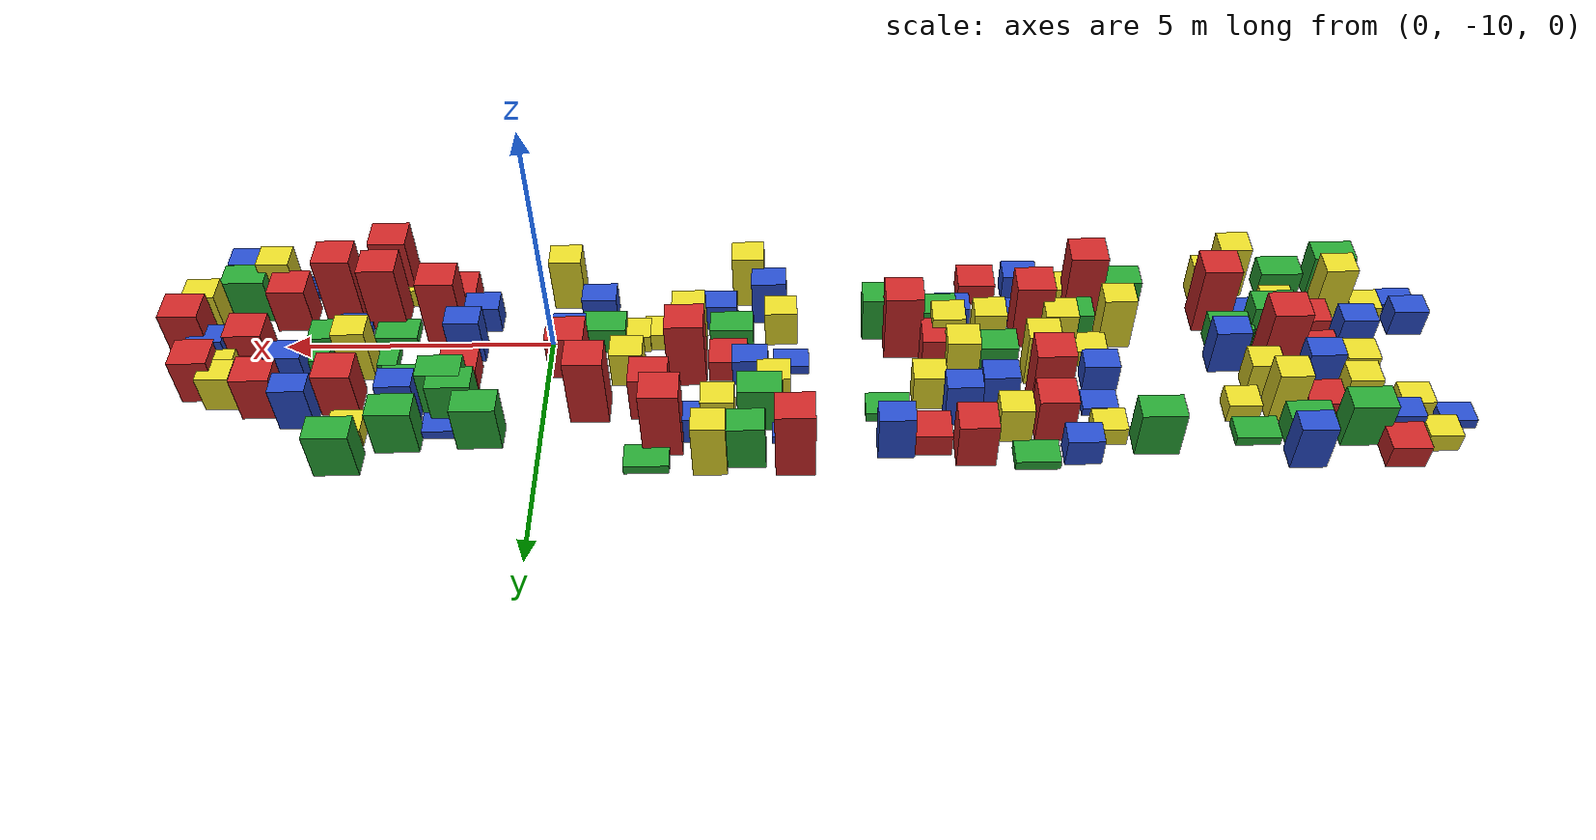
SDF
<?xml version="1.0" encoding="UTF-8"?>
<sdf version="1.4">
  <model name="baggage_group_C">
      <model name='baggage_A_0.5_0'>
        <include>
          <uri>model://baggage_A_0.5</uri>
          <pose>-8.03594 -11.2169 0.25049 0 -0 0</pose>
        </include>
      </model>
      <model name='baggage_A_0.5_1'>
        <include>
          <uri>model://baggage_A_0.5</uri>
          <pose>-14.2316 -9.33114 0.25012 0 -0 0</pose>
        </include>
      </model>
      <model name='baggage_A_0.5_11'>
        <include>
          <uri>model://baggage_A_0.5</uri>
          <pose>-3.31837 -9.30433 0.250138 0 -0 0</pose>
        </include>
      </model>
      <model name='baggage_A_0.5_12'>
        <include>
          <uri>model://baggage_A_0.5</uri>
          <pose>1.87194 -11.1809 0.25025 0 -0 0</pose>
        </include>
      </model>
      <model name='baggage_A_0.5_13'>
        <include>
          <uri>model://baggage_A_0.5</uri>
          <pose>1.60495 -9.14729 0.249612 0 -0 0</pose>
        </include>
      </model>
      <model name='baggage_A_0.5_14'>
        <include>
          <uri>model://baggage_A_0.5</uri>
          <pose>-7.25875 -9.4415 0.249945 0 -0 0</pose>
        </include>
      </model>
      <model name='baggage_A_0.5_17'>
        <include>
          <uri>model://baggage_A_0.5</uri>
          <pose>5.55061 -9.07477 0.249861 0 -0 0</pose>
        </include>
      </model>
      <model name='baggage_A_0.5_2'>
        <include>
          <uri>model://baggage_A_0.5</uri>
          <pose>-15.2039 -7.06577 0.250351 0 -0 0</pose>
        </include>
      </model>
      <model name='baggage_A_0.5_3'>
        <include>
          <uri>model://baggage_A_0.5</uri>
          <pose>-14.2574 -10.1602 0.249714 0 -0 0</pose>
        </include>
      </model>
      <model name='baggage_A_0.5_4'>
        <include>
          <uri>model://baggage_A_0.5</uri>
          <pose>-6.92975 -7.46539 0.249929 0 -0 0</pose>
        </include>
      </model>
      <model name='baggage_A_0.5_8'>
        <include>
          <uri>model://baggage_A_0.5</uri>
          <pose>-14.0214 -8.09758 0.249739 0 -0 0</pose>
        </include>
      </model>
      <model name='baggage_A_1.0_0'>
        <include>
          <uri>model://baggage_A_1.0</uri>
          <pose>5.45859 -9.61955 0.500424 0 -0 0</pose>
        </include>
      </model>
      <model name='baggage_A_1.0_11'>
        <include>
          <uri>model://baggage_A_1.0</uri>
          <pose>6.26723 -8.96247 0.50022 0 -0 0</pose>
        </include>
      </model>
      <model name='baggage_A_1.0_12'>
        <include>
          <uri>model://baggage_A_1.0</uri>
          <pose>-0.366477 -9.43157 0.500268 0 -0 0</pose>
        </include>
      </model>
      <model name='baggage_A_1.0_13'>
        <include>
          <uri>model://baggage_A_1.0</uri>
          <pose>-7.19822 -9.26942 0.499913 0 -0 0</pose>
        </include>
      </model>
      <model name='baggage_A_1.0_15'>
        <include>
          <uri>model://baggage_A_1.0</uri>
          <pose>5.06848 -8.52743 0.499714 0 -0 0</pose>
        </include>
      </model>
      <model name='baggage_A_1.0_18'>
        <include>
          <uri>model://baggage_A_1.0</uri>
          <pose>-1.93145 -8.39325 0.500077 0 -0 0</pose>
        </include>
      </model>
      <model name='baggage_A_1.0_19'>
        <include>
          <uri>model://baggage_A_1.0</uri>
          <pose>-7.68545 -7.21501 0.50038 0 -0 0</pose>
        </include>
      </model>
      <model name='baggage_A_1.0_2'>
        <include>
          <uri>model://baggage_A_1.0</uri>
          <pose>-9.12711 -7.76509 0.499893 0 -0 0</pose>
        </include>
      </model>
      <model name='baggage_A_1.0_7'>
        <include>
          <uri>model://baggage_A_1.0</uri>
          <pose>4.91955 -10.7368 0.499658 0 -0 0</pose>
        </include>
      </model>
      <model name='baggage_A_1.0_8'>
        <include>
          <uri>model://baggage_A_1.0</uri>
          <pose>3.65214 -8.58556 0.500396 0 -0 0</pose>
        </include>
      </model>
      <model name='baggage_A_1.5_0'>
        <include>
          <uri>model://baggage_A_1.5</uri>
          <pose>-10.0364 -10.8358 0.750316 0 -0 0</pose>
        </include>
      </model>
      <model name='baggage_A_1.5_1'>
        <include>
          <uri>model://baggage_A_1.5</uri>
          <pose>-9.10882 -8.39068 0.74973 0 -0 0</pose>
        </include>
      </model>
      <model name='baggage_A_1.5_10'>
        <include>
          <uri>model://baggage_A_1.5</uri>
          <pose>-6.54813 -9.8382 0.750412 0 -0 0</pose>
        </include>
      </model>
      <model name='baggage_A_1.5_14'>
        <include>
          <uri>model://baggage_A_1.5</uri>
          <pose>-13.4679 -9.32583 0.749722 0 -0 0</pose>
        </include>
      </model>
      <model name='baggage_A_1.5_16'>
        <include>
          <uri>model://baggage_A_1.5</uri>
          <pose>3.15994 -10.748 0.749519 0 -0 0</pose>
        </include>
      </model>
      <model name='baggage_A_1.5_18'>
        <include>
          <uri>model://baggage_A_1.5</uri>
          <pose>-12.4395 -10.4565 0.750143 0 -0 0</pose>
        </include>
      </model>
      <model name='baggage_A_1.5_19'>
        <include>
          <uri>model://baggage_A_1.5</uri>
          <pose>4.03504 -11.0029 0.74987 0 -0 0</pose>
        </include>
      </model>
      <model name='baggage_A_1.5_2'>
        <include>
          <uri>model://baggage_A_1.5</uri>
          <pose>-2.20156 -7.55419 0.750259 0 -0 0</pose>
        </include>
      </model>
      <model name='baggage_A_1.5_3'>
        <include>
          <uri>model://baggage_A_1.5</uri>
          <pose>3.08282 -11.4936 0.750184 0 -0 0</pose>
        </include>
      </model>
      <model name='baggage_A_1.5_4'>
        <include>
          <uri>model://baggage_A_1.5</uri>
          <pose>2.01974 -10.377 0.749721 0 -0 0</pose>
        </include>
      </model>
      <model name='baggage_A_1.5_5'>
        <include>
          <uri>model://baggage_A_1.5</uri>
          <pose>-8.95148 -10.0626 0.75034 0 -0 0</pose>
        </include>
      </model>
      <model name='baggage_A_1.5_6'>
        <include>
          <uri>model://baggage_A_1.5</uri>
          <pose>-4.53239 -7.0569 0.749911 0 -0 0</pose>
        </include>
      </model>
      <model name='baggage_A_1.5_7'>
        <include>
          <uri>model://baggage_A_1.5</uri>
          <pose>-0.848958 -8.33948 0.750186 0 -0 0</pose>
        </include>
      </model>
      <model name='baggage_A_1.5_8'>
        <include>
          <uri>model://baggage_A_1.5</uri>
          <pose>6.46251 -9.63393 0.750483 0 -0 0</pose>
        </include>
      </model>
      <model name='baggage_A_1.5_9'>
        <include>
          <uri>model://baggage_A_1.5</uri>
          <pose>-2.56708 -9.21065 0.749579 0 -0 0</pose>
        </include>
      </model>
      <model name='baggage_B_0.2_1'>
        <include>
          <uri>model://baggage_B_0.2</uri>
          <pose>3.77178 -10.4583 0.100323 0 -0 0</pose>
        </include>
      </model>
      <model name='baggage_B_0.2_10'>
        <include>
          <uri>model://baggage_B_0.2</uri>
          <pose>-4.46931 -9.38562 0.100011 0 -0 0</pose>
        </include>
      </model>
      <model name='baggage_B_0.2_12'>
        <include>
          <uri>model://baggage_B_0.2</uri>
          <pose>6.10095 -10.2331 0.100364 0 -0 0</pose>
        </include>
      </model>
      <model name='baggage_B_0.2_15'>
        <include>
          <uri>model://baggage_B_0.2</uri>
          <pose>-8.51455 -10.6685 0.099721 0 -0 0</pose>
        </include>
      </model>
      <model name='baggage_B_0.2_17'>
        <include>
          <uri>model://baggage_B_0.2</uri>
          <pose>-16.1263 -10.7977 0.100166 0 -0 0</pose>
        </include>
      </model>
      <model name='baggage_B_0.2_18'>
        <include>
          <uri>model://baggage_B_0.2</uri>
          <pose>-10.0243 -8.26472 0.100334 0 -0 0</pose>
        </include>
      </model>
      <model name='baggage_B_0.2_4'>
        <include>
          <uri>model://baggage_B_0.2</uri>
          <pose>-16.385 -7.85399 0.10017 0 -0 0</pose>
        </include>
      </model>
      <model name='baggage_B_0.2_5'>
        <include>
          <uri>model://baggage_B_0.2</uri>
          <pose>-13.1245 -10.6044 0.099516 0 -0 0</pose>
        </include>
      </model>
      <model name='baggage_B_0.2_6'>
        <include>
          <uri>model://baggage_B_0.2</uri>
          <pose>1.7833 -7.92105 0.100006 0 -0 0</pose>
        </include>
      </model>
      <model name='baggage_B_0.2_7'>
        <include>
          <uri>model://baggage_B_0.2</uri>
          <pose>4.8451 -11.4951 0.099656 0 -0 0</pose>
        </include>
      </model>
      <model name='baggage_B_0.2_8'>
        <include>
          <uri>model://baggage_B_0.2</uri>
          <pose>-8.25675 -8.84063 0.100339 0 -0 0</pose>
        </include>
      </model>
      <model name='baggage_B_0.2_9'>
        <include>
          <uri>model://baggage_B_0.2</uri>
          <pose>-4.44581 -7.70343 0.099619 0 -0 0</pose>
        </include>
      </model>
      <model name='baggage_B_0.6_10'>
        <include>
          <uri>model://baggage_B_0.6</uri>
          <pose>-9.56491 -7.13969 0.299655 0 -0 0</pose>
        </include>
      </model>
      <model name='baggage_B_0.6_12'>
        <include>
          <uri>model://baggage_B_0.6</uri>
          <pose>-0.328181 -9.98674 0.30028 0 -0 0</pose>
        </include>
      </model>
      <model name='baggage_B_0.6_13'>
        <include>
          <uri>model://baggage_B_0.6</uri>
          <pose>3.81011 -11.3067 0.299532 0 -0 0</pose>
        </include>
      </model>
      <model name='baggage_B_0.6_14'>
        <include>
          <uri>model://baggage_B_0.6</uri>
          <pose>-0.855295 -10.7759 0.300129 0 -0 0</pose>
        </include>
      </model>
      <model name='baggage_B_0.6_15'>
        <include>
          <uri>model://baggage_B_0.6</uri>
          <pose>-10.1082 -8.89414 0.300319 0 -0 0</pose>
        </include>
      </model>
      <model name='baggage_B_0.6_16'>
        <include>
          <uri>model://baggage_B_0.6</uri>
          <pose>-3.7208 -9.14041 0.299694 0 -0 0</pose>
        </include>
      </model>
      <model name='baggage_B_0.6_19'>
        <include>
          <uri>model://baggage_B_0.6</uri>
          <pose>-3.13474 -10.5467 0.29962 0 -0 0</pose>
        </include>
      </model>
      <model name='baggage_B_0.6_3'>
        <include>
          <uri>model://baggage_B_0.6</uri>
          <pose>-15.2942 -7.63311 0.299589 0 -0 0</pose>
        </include>
      </model>
      <model name='baggage_B_0.6_4'>
        <include>
          <uri>model://baggage_B_0.6</uri>
          <pose>-16.1066 -10.1982 0.299607 0 -0 0</pose>
        </include>
      </model>
      <model name='baggage_B_0.6_5'>
        <include>
          <uri>model://baggage_B_0.6</uri>
          <pose>-7.51872 -10.4098 0.300264 0 -0 0</pose>
        </include>
      </model>
      <model name='baggage_B_0.6_6'>
        <include>
          <uri>model://baggage_B_0.6</uri>
          <pose>-8.87214 -11.2737 0.299875 0 -0 0</pose>
        </include>
      </model>
      <model name='baggage_B_0.6_7'>
        <include>
          <uri>model://baggage_B_0.6</uri>
          <pose>-2.59718 -7.76422 0.300177 0 -0 0</pose>
        </include>
      </model>
      <model name='baggage_B_0.6_9'>
        <include>
          <uri>model://baggage_B_0.6</uri>
          <pose>1.33277 -10.5797 0.300437 0 -0 0</pose>
        </include>
      </model>
      <model name='baggage_B_1.0_0'>
        <include>
          <uri>model://baggage_B_1.0</uri>
          <pose>4.35836 -8.18912 0.500277 0 -0 0</pose>
        </include>
      </model>
      <model name='baggage_B_1.0_10'>
        <include>
          <uri>model://baggage_B_1.0</uri>
          <pose>-14.0823 -8.74476 0.500175 0 -0 0</pose>
        </include>
      </model>
      <model name='baggage_B_1.0_11'>
        <include>
          <uri>model://baggage_B_1.0</uri>
          <pose>-8.19238 -8.28807 0.500476 0 -0 0</pose>
        </include>
      </model>
      <model name='baggage_B_1.0_13'>
        <include>
          <uri>model://baggage_B_1.0</uri>
          <pose>5.84222 -11.4452 0.49988 0 -0 0</pose>
        </include>
      </model>
      <model name='baggage_B_1.0_14'>
        <include>
          <uri>model://baggage_B_1.0</uri>
          <pose>-6.29775 -7.3349 0.500395 0 -0 0</pose>
        </include>
      </model>
      <model name='baggage_B_1.0_16'>
        <include>
          <uri>model://baggage_B_1.0</uri>
          <pose>2.52067 -8.27161 0.499682 0 -0 0</pose>
        </include>
      </model>
      <model name='baggage_B_1.0_17'>
        <include>
          <uri>model://baggage_B_1.0</uri>
          <pose>-4.07109 -10.7288 0.4998 0 -0 0</pose>
        </include>
      </model>
      <model name='baggage_B_1.0_19'>
        <include>
          <uri>model://baggage_B_1.0</uri>
          <pose>-7.52481 -8.07438 0.499705 0 -0 0</pose>
        </include>
      </model>
      <model name='baggage_B_1.0_2'>
        <include>
          <uri>model://baggage_B_1.0</uri>
          <pose>1.53997 -9.80065 0.499892 0 -0 0</pose>
        </include>
      </model>
      <model name='baggage_B_1.0_3'>
        <include>
          <uri>model://baggage_B_1.0</uri>
          <pose>-12.5094 -9.30404 0.499578 0 -0 0</pose>
        </include>
      </model>
      <model name='baggage_B_1.0_5'>
        <include>
          <uri>model://baggage_B_1.0</uri>
          <pose>-14.8892 -9.59574 0.500009 0 -0 0</pose>
        </include>
      </model>
      <model name='baggage_B_1.0_6'>
        <include>
          <uri>model://baggage_B_1.0</uri>
          <pose>6.10682 -9.41213 0.499655 0 -0 0</pose>
        </include>
      </model>
      <model name='baggage_B_1.0_7'>
        <include>
          <uri>model://baggage_B_1.0</uri>
          <pose>4.61085 -8.98332 0.500376 0 -0 0</pose>
        </include>
      </model>
      <model name='baggage_B_1.0_8'>
        <include>
          <uri>model://baggage_B_1.0</uri>
          <pose>-13.4885 -7.00206 0.499638 0 -0 0</pose>
        </include>
      </model>
      <model name='baggage_C_0.4_10'>
        <include>
          <uri>model://baggage_C_0.4</uri>
          <pose>-2.03667 -10.0567 0.199668 0 -0 0</pose>
        </include>
      </model>
      <model name='baggage_C_0.4_13'>
        <include>
          <uri>model://baggage_C_0.4</uri>
          <pose>3.41294 -7.80368 0.20041 0 -0 0</pose>
        </include>
      </model>
      <model name='baggage_C_0.4_14'>
        <include>
          <uri>model://baggage_C_0.4</uri>
          <pose>-15.394 -10.5439 0.200396 0 -0 0</pose>
        </include>
      </model>
      <model name='baggage_C_0.4_15'>
        <include>
          <uri>model://baggage_C_0.4</uri>
          <pose>-10.0151 -9.50486 0.199785 0 -0 0</pose>
        </include>
      </model>
      <model name='baggage_C_0.4_16'>
        <include>
          <uri>model://baggage_C_0.4</uri>
          <pose>2.56529 -11.3131 0.19962 0 -0 0</pose>
        </include>
      </model>
      <model name='baggage_C_0.4_19'>
        <include>
          <uri>model://baggage_C_0.4</uri>
          <pose>-9.6551 -11.1373 0.200331 0 -0 0</pose>
        </include>
      </model>
      <model name='baggage_C_0.4_2'>
        <include>
          <uri>model://baggage_C_0.4</uri>
          <pose>-1.55497 -10.0172 0.199962 0 -0 0</pose>
        </include>
      </model>
      <model name='baggage_C_0.4_4'>
        <include>
          <uri>model://baggage_C_0.4</uri>
          <pose>-10.0937 -7.6099 0.199909 0 -0 0</pose>
        </include>
      </model>
      <model name='baggage_C_0.4_5'>
        <include>
          <uri>model://baggage_C_0.4</uri>
          <pose>-15.6965 -8.14517 0.200332 0 -0 0</pose>
        </include>
      </model>
      <model name='baggage_C_0.4_6'>
        <include>
          <uri>model://baggage_C_0.4</uri>
          <pose>-7.5971 -9.48187 0.20021 0 -0 0</pose>
        </include>
      </model>
      <model name='baggage_C_0.4_7'>
        <include>
          <uri>model://baggage_C_0.4</uri>
          <pose>-15.9405 -7.36169 0.200387 0 -0 0</pose>
        </include>
      </model>
      <model name='baggage_C_0.4_8'>
        <include>
          <uri>model://baggage_C_0.4</uri>
          <pose>-12.569 -8.12015 0.19975 0 -0 0</pose>
        </include>
      </model>
      <model name='baggage_C_0.4_9'>
        <include>
          <uri>model://baggage_C_0.4</uri>
          <pose>-13.7716 -10.6987 0.199509 0 -0 0</pose>
        </include>
      </model>
      <model name='baggage_C_0.8_0'>
        <include>
          <uri>model://baggage_C_0.8</uri>
          <pose>-14.7985 -8.86686 0.399898 0 -0 0</pose>
        </include>
      </model>
      <model name='baggage_C_0.8_1'>
        <include>
          <uri>model://baggage_C_0.8</uri>
          <pose>-8.18214 -10.0546 0.399641 0 -0 0</pose>
        </include>
      </model>
      <model name='baggage_C_0.8_11'>
        <include>
          <uri>model://baggage_C_0.8</uri>
          <pose>-4.15694 -8.54129 0.400298 0 -0 0</pose>
        </include>
      </model>
      <model name='baggage_C_0.8_13'>
        <include>
          <uri>model://baggage_C_0.8</uri>
          <pose>5.86818 -8.96882 0.399781 0 -0 0</pose>
        </include>
      </model>
      <model name='baggage_C_0.8_16'>
        <include>
          <uri>model://baggage_C_0.8</uri>
          <pose>-4.28946 -10.1662 0.399712 0 -0 0</pose>
        </include>
      </model>
      <model name='baggage_C_0.8_17'>
        <include>
          <uri>model://baggage_C_0.8</uri>
          <pose>-12.4757 -11.1307 0.400316 0 -0 0</pose>
        </include>
      </model>
      <model name='baggage_C_0.8_18'>
        <include>
          <uri>model://baggage_C_0.8</uri>
          <pose>5.83286 -8.70082 0.400418 0 -0 0</pose>
        </include>
      </model>
      <model name='baggage_C_0.8_19'>
        <include>
          <uri>model://baggage_C_0.8</uri>
          <pose>-6.95007 -8.50455 0.399568 0 -0 0</pose>
        </include>
      </model>
      <model name='baggage_C_0.8_3'>
        <include>
          <uri>model://baggage_C_0.8</uri>
          <pose>-3.16041 -8.00644 0.400375 0 -0 0</pose>
        </include>
      </model>
      <model name='baggage_C_0.8_4'>
        <include>
          <uri>model://baggage_C_0.8</uri>
          <pose>-8.42469 -7.7081 0.399851 0 -0 0</pose>
        </include>
      </model>
      <model name='baggage_C_0.8_6'>
        <include>
          <uri>model://baggage_C_0.8</uri>
          <pose>-13.0299 -8.7037 0.400282 0 -0 0</pose>
        </include>
      </model>
      <model name='baggage_C_0.8_7'>
        <include>
          <uri>model://baggage_C_0.8</uri>
          <pose>-1.47845 -9.17321 0.400499 0 -0 0</pose>
        </include>
      </model>
      <model name='baggage_C_0.8_9'>
        <include>
          <uri>model://baggage_C_0.8</uri>
          <pose>-14.6985 -8.32008 0.400138 0 -0 0</pose>
        </include>
      </model>
      <model name='baggage_C_1.2_0'>
        <include>
          <uri>model://baggage_C_1.2</uri>
          <pose>-12.9263 -11.3324 0.600139 0 -0 0</pose>
        </include>
      </model>
      <model name='baggage_C_1.2_1'>
        <include>
          <uri>model://baggage_C_1.2</uri>
          <pose>-3.043 -7.0378 0.599797 0 -0 0</pose>
        </include>
      </model>
      <model name='baggage_C_1.2_10'>
        <include>
          <uri>model://baggage_C_1.2</uri>
          <pose>-9.4029 -9.61069 0.60012 0 -0 0</pose>
        </include>
      </model>
      <model name='baggage_C_1.2_11'>
        <include>
          <uri>model://baggage_C_1.2</uri>
          <pose>-7.34296 -9.58337 0.599802 0 -0 0</pose>
        </include>
      </model>
      <model name='baggage_C_1.2_13'>
        <include>
          <uri>model://baggage_C_1.2</uri>
          <pose>3.47639 -9.38669 0.600152 0 -0 0</pose>
        </include>
      </model>
      <model name='baggage_C_1.2_17'>
        <include>
          <uri>model://baggage_C_1.2</uri>
          <pose>-2.60012 -9.91803 0.599966 0 -0 0</pose>
        </include>
      </model>
      <model name='baggage_C_1.2_18'>
        <include>
          <uri>model://baggage_C_1.2</uri>
          <pose>-10.5266 -9.98119 0.600132 0 -0 0</pose>
        </include>
      </model>
      <model name='baggage_C_1.2_19'>
        <include>
          <uri>model://baggage_C_1.2</uri>
          <pose>-0.241138 -11.1961 0.599803 0 -0 0</pose>
        </include>
      </model>
      <model name='baggage_C_1.2_2'>
        <include>
          <uri>model://baggage_C_1.2</uri>
          <pose>-3.67884 -11.219 0.600288 0 -0 0</pose>
        </include>
      </model>
      <model name='baggage_C_1.2_3'>
        <include>
          <uri>model://baggage_C_1.2</uri>
          <pose>-13.2994 -8.08452 0.600415 0 -0 0</pose>
        </include>
      </model>
      <model name='baggage_C_1.2_4'>
        <include>
          <uri>model://baggage_C_1.2</uri>
          <pose>5.24246 -11.2477 0.600237 0 -0 0</pose>
        </include>
      </model>
      <model name='baggage_C_1.2_6'>
        <include>
          <uri>model://baggage_C_1.2</uri>
          <pose>-9.03343 -9.08986 0.600497 0 -0 0</pose>
        </include>
      </model>
      <model name='baggage_C_1.2_7'>
        <include>
          <uri>model://baggage_C_1.2</uri>
          <pose>-14.7886 -10.7235 0.599939 0 -0 0</pose>
        </include>
      </model>
      <model name='baggage_C_1.2_8'>
        <include>
          <uri>model://baggage_C_1.2</uri>
          <pose>-7.56804 -8.96864 0.600004 0 -0 0</pose>
        </include>
      </model>
      <model name='baggage_C_1.2_9'>
        <include>
          <uri>model://baggage_C_1.2</uri>
          <pose>6.40046 -10.3826 0.60009 0 -0 0</pose>
        </include>
      </model>
      <model name='baggage_D_0.2_0'>
        <include>
          <uri>model://baggage_D_0.2</uri>
          <pose>2.94676 -10.2616 0.100466 0 -0 0</pose>
        </include>
      </model>
      <model name='baggage_D_0.2_1'>
        <include>
          <uri>model://baggage_D_0.2</uri>
          <pose>2.04731 -9.18651 0.100025 0 -0 0</pose>
        </include>
      </model>
      <model name='baggage_D_0.2_10'>
        <include>
          <uri>model://baggage_D_0.2</uri>
          <pose>3.21341 -9.56632 0.100377 0 -0 0</pose>
        </include>
      </model>
      <model name='baggage_D_0.2_11'>
        <include>
          <uri>model://baggage_D_0.2</uri>
          <pose>2.67309 -9.08721 0.100165 0 -0 0</pose>
        </include>
      </model>
      <model name='baggage_D_0.2_14'>
        <include>
          <uri>model://baggage_D_0.2</uri>
          <pose>-12.728 -7.55154 0.100245 0 -0 0</pose>
        </include>
      </model>
      <model name='baggage_D_0.2_2'>
        <include>
          <uri>model://baggage_D_0.2</uri>
          <pose>-9.4184 -10.7953 0.099757 0 -0 0</pose>
        </include>
      </model>
      <model name='baggage_D_0.2_3'>
        <include>
          <uri>model://baggage_D_0.2</uri>
          <pose>6.61347 -11.0205 0.099749 0 -0 0</pose>
        </include>
      </model>
      <model name='baggage_D_0.2_4'>
        <include>
          <uri>model://baggage_D_0.2</uri>
          <pose>-8.76216 -7.06493 0.099521 0 -0 0</pose>
        </include>
      </model>
      <model name='baggage_D_0.2_5'>
        <include>
          <uri>model://baggage_D_0.2</uri>
          <pose>-6.19975 -8.23202 0.100269 0 -0 0</pose>
        </include>
      </model>
      <model name='baggage_D_0.2_8'>
        <include>
          <uri>model://baggage_D_0.2</uri>
          <pose>-1.92488 -7.08806 0.099611 0 -0 0</pose>
        </include>
      </model>
      <model name='baggage_D_0.6_0'>
        <include>
          <uri>model://baggage_D_0.6</uri>
          <pose>-3.37365 -9.95737 0.300172 0 -0 0</pose>
        </include>
      </model>
      <model name='baggage_D_0.6_12'>
        <include>
          <uri>model://baggage_D_0.6</uri>
          <pose>-9.75052 -10.2288 0.300063 0 -0 0</pose>
        </include>
      </model>
      <model name='baggage_D_0.6_14'>
        <include>
          <uri>model://baggage_D_0.6</uri>
          <pose>-10.7847 -11.0773 0.299731 0 -0 0</pose>
        </include>
      </model>
      <model name='baggage_D_0.6_15'>
        <include>
          <uri>model://baggage_D_0.6</uri>
          <pose>-13.6141 -7.55807 0.299585 0 -0 0</pose>
        </include>
      </model>
      <model name='baggage_D_0.6_17'>
        <include>
          <uri>model://baggage_D_0.6</uri>
          <pose>-8.24296 -9.41172 0.30001 0 -0 0</pose>
        </include>
      </model>
      <model name='baggage_D_0.6_18'>
        <include>
          <uri>model://baggage_D_0.6</uri>
          <pose>4.03283 -9.8834 0.299725 0 -0 0</pose>
        </include>
      </model>
      <model name='baggage_D_0.6_3'>
        <include>
          <uri>model://baggage_D_0.6</uri>
          <pose>-1.00857 -10.0091 0.300075 0 -0 0</pose>
        </include>
      </model>
      <model name='baggage_D_0.6_4'>
        <include>
          <uri>model://baggage_D_0.6</uri>
          <pose>-13.9129 -11.2888 0.299886 0 -0 0</pose>
        </include>
      </model>
      <model name='baggage_D_0.6_5'>
        <include>
          <uri>model://baggage_D_0.6</uri>
          <pose>-12.6659 -9.81123 0.300078 0 -0 0</pose>
        </include>
      </model>
      <model name='baggage_D_0.6_6'>
        <include>
          <uri>model://baggage_D_0.6</uri>
          <pose>4.33504 -9.30172 0.300004 0 -0 0</pose>
        </include>
      </model>
      <model name='baggage_D_1.0_0'>
        <include>
          <uri>model://baggage_D_1.0</uri>
          <pose>-13.4182 -9.93639 0.499527 0 -0 0</pose>
        </include>
      </model>
      <model name='baggage_D_1.0_1'>
        <include>
          <uri>model://baggage_D_1.0</uri>
          <pose>1.78235 -8.55029 0.499829 0 -0 0</pose>
        </include>
      </model>
      <model name='baggage_D_1.0_10'>
        <include>
          <uri>model://baggage_D_1.0</uri>
          <pose>2.49528 -7.63991 0.499609 0 -0 0</pose>
        </include>
      </model>
      <model name='baggage_D_1.0_12'>
        <include>
          <uri>model://baggage_D_1.0</uri>
          <pose>5.78948 -10.9579 0.500155 0 -0 0</pose>
        </include>
      </model>
      <model name='baggage_D_1.0_13'>
        <include>
          <uri>model://baggage_D_1.0</uri>
          <pose>-3.9131 -8.05958 0.500309 0 -0 0</pose>
        </include>
      </model>
      <model name='baggage_D_1.0_14'>
        <include>
          <uri>model://baggage_D_1.0</uri>
          <pose>-14.5813 -7.51623 0.499625 0 -0 0</pose>
        </include>
      </model>
      <model name='baggage_D_1.0_15'>
        <include>
          <uri>model://baggage_D_1.0</uri>
          <pose>1.55961 -8.25785 0.499714 0 -0 0</pose>
        </include>
      </model>
      <model name='baggage_D_1.0_16'>
        <include>
          <uri>model://baggage_D_1.0</uri>
          <pose>1.04867 -7.70396 0.499668 0 -0 0</pose>
        </include>
      </model>
      <model name='baggage_D_1.0_18'>
        <include>
          <uri>model://baggage_D_1.0</uri>
          <pose>-14.8495 -11.2668 0.499747 0 -0 0</pose>
        </include>
      </model>
      <model name='baggage_D_1.0_19'>
        <include>
          <uri>model://baggage_D_1.0</uri>
          <pose>-3.61328 -7.19194 0.499694 0 -0 0</pose>
        </include>
      </model>
      <model name='baggage_D_1.0_2'>
        <include>
          <uri>model://baggage_D_1.0</uri>
          <pose>-6.21014 -10.2817 0.500201 0 -0 0</pose>
        </include>
      </model>
      <model name='baggage_D_1.0_3'>
        <include>
          <uri>model://baggage_D_1.0</uri>
          <pose>-10.8944 -7.37411 0.500464 0 -0 0</pose>
        </include>
      </model>
      <model name='baggage_D_1.0_4'>
        <include>
          <uri>model://baggage_D_1.0</uri>
          <pose>3.46195 -7.13622 0.500464 0 -0 0</pose>
        </include>
      </model>
      <model name='baggage_D_1.0_7'>
        <include>
          <uri>model://baggage_D_1.0</uri>
          <pose>-7.12357 -9.96462 0.499963 0 -0 0</pose>
        </include>
      </model>
  </model>
</sdf>

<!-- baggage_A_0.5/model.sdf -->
<sdf version='1.4'>
  <model name="baggage_A_0.5">
      <static>true</static>
      <link name="link">
         <collision name="collision">
            <geometry>
               <box>
                  <size>0.7 0.6 0.5</size>
               </box>
            </geometry>
         </collision>
         <visual name="visual">
            <cast_shadows>false</cast_shadows>
            <geometry>
               <box>
                  <size>0.7 0.6 0.5</size>
               </box>
            </geometry>
            <material>
               <script>
                  <uri>file://media/materials/scripts/gazebo.material</uri>
                  <name>Gazebo/Red</name>
               </script>
            </material>
         </visual>
      </link>
  </model>
</sdf>

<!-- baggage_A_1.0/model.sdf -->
<sdf version='1.4'>
  <model name="baggage_A_1.0">
      <static>true</static>
      <link name="link">
         <collision name="collision">
            <geometry>
               <box>
                  <size>0.7 0.6 1.0</size>
               </box>
            </geometry>
         </collision>
         <visual name="visual">
            <cast_shadows>false</cast_shadows>
            <geometry>
               <box>
                  <size>0.7 0.6 1.0</size>
               </box>
            </geometry>
            <material>
               <script>
                  <uri>file://media/materials/scripts/gazebo.material</uri>
                  <name>Gazebo/Red</name>
               </script>
            </material>
         </visual>
      </link>
  </model>
</sdf>

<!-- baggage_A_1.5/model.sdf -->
<sdf version='1.4'>
  <model name="baggage_A_1.5">
      <static>true</static>
      <link name="link">
         <collision name="collision">
            <geometry>
               <box>
                  <size>0.7 0.6 1.5</size>
               </box>
            </geometry>
         </collision>
         <visual name="visual">
            <cast_shadows>false</cast_shadows>
            <geometry>
               <box>
                  <size>0.7 0.6 1.5</size>
               </box>
            </geometry>
            <material>
               <script>
                  <uri>file://media/materials/scripts/gazebo.material</uri>
                  <name>Gazebo/Red</name>
               </script>
            </material>
         </visual>
      </link>
  </model>
</sdf>

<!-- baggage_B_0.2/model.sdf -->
<sdf version='1.4'>
  <model name="baggage_B_0.2">
      <static>true</static>
      <link name="link">
         <collision name="collision">
            <geometry>
               <box>
                  <size>0.65 0.45 0.2</size>
               </box>
            </geometry>
         </collision>
         <visual name="visual">
            <cast_shadows>false</cast_shadows>
            <geometry>
               <box>
                  <size>0.65 0.45 0.2</size>
               </box>
            </geometry>
            <material>
               <script>
                  <uri>file://media/materials/scripts/gazebo.material</uri>
                  <name>Gazebo/Blue</name>
               </script>
            </material>
         </visual>
      </link>
  </model>
</sdf>

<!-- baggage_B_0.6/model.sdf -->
<sdf version='1.4'>
  <model name="baggage_B_0.6">
      <static>true</static>
      <link name="link">
         <collision name="collision">
            <geometry>
               <box>
                  <size>0.65 0.45 0.6</size>
               </box>
            </geometry>
         </collision>
         <visual name="visual">
            <cast_shadows>false</cast_shadows>
            <geometry>
               <box>
                  <size>0.65 0.45 0.6</size>
               </box>
            </geometry>
            <material>
               <script>
                  <uri>file://media/materials/scripts/gazebo.material</uri>
                  <name>Gazebo/Blue</name>
               </script>
            </material>
         </visual>
      </link>
  </model>
</sdf>

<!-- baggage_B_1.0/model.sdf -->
<sdf version='1.4'>
  <model name="baggage_B_1.0">
      <static>true</static>
      <link name="link">
         <collision name="collision">
            <geometry>
               <box>
                  <size>0.65 0.45 1.0</size>
               </box>
            </geometry>
         </collision>
         <visual name="visual">
            <cast_shadows>false</cast_shadows>
            <geometry>
               <box>
                  <size>0.65 0.45 1.0</size>
               </box>
            </geometry>
            <material>
               <script>
                  <uri>file://media/materials/scripts/gazebo.material</uri>
                  <name>Gazebo/Blue</name>
               </script>
            </material>
         </visual>
      </link>
  </model>
</sdf>

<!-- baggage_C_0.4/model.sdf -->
<sdf version='1.4'>
  <model name="baggage_C_0.4">
      <static>true</static>
      <link name="link">
         <collision name="collision">
            <geometry>
               <box>
                  <size>0.6 0.5 0.4</size>
               </box>
            </geometry>
         </collision>
         <visual name="visual">
            <cast_shadows>false</cast_shadows>
            <geometry>
               <box>
                  <size>0.6 0.5 0.4</size>
               </box>
            </geometry>
            <material>
               <script>
                  <uri>file://media/materials/scripts/gazebo.material</uri>
                  <name>Gazebo/Yellow</name>
               </script>
            </material>
         </visual>
      </link>
  </model>
</sdf>

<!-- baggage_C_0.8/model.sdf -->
<sdf version='1.4'>
  <model name="baggage_C_0.8">
      <static>true</static>
      <link name="link">
         <collision name="collision">
            <geometry>
               <box>
                  <size>0.6 0.5 0.8</size>
               </box>
            </geometry>
         </collision>
         <visual name="visual">
            <cast_shadows>false</cast_shadows>
            <geometry>
               <box>
                  <size>0.6 0.5 0.8</size>
               </box>
            </geometry>
            <material>
               <script>
                  <uri>file://media/materials/scripts/gazebo.material</uri>
                  <name>Gazebo/Yellow</name>
               </script>
            </material>
         </visual>
      </link>
  </model>
</sdf>

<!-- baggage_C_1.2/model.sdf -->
<sdf version='1.4'>
  <model name="baggage_C_1.2">
      <static>true</static>
      <link name="link">
         <collision name="collision">
            <geometry>
               <box>
                  <size>0.6 0.5 1.2</size>
               </box>
            </geometry>
         </collision>
         <visual name="visual">
            <cast_shadows>false</cast_shadows>
            <geometry>
               <box>
                  <size>0.6 0.5 1.2</size>
               </box>
            </geometry>
            <material>
               <script>
                  <uri>file://media/materials/scripts/gazebo.material</uri>
                  <name>Gazebo/Yellow</name>
               </script>
            </material>
         </visual>
      </link>
  </model>
</sdf>

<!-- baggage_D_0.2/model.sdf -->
<sdf version='1.4'>
  <model name="baggage_D_0.2">
      <static>true</static>
      <link name="link">
         <collision name="collision">
            <geometry>
               <box>
                  <size>0.8 0.5 0.2</size>
               </box>
            </geometry>
         </collision>
         <visual name="visual">
            <cast_shadows>false</cast_shadows>
            <geometry>
               <box>
                  <size>0.8 0.5 0.2</size>
               </box>
            </geometry>
            <material>
               <script>
                  <uri>file://media/materials/scripts/gazebo.material</uri>
                  <name>Gazebo/Green</name>
               </script>
            </material>
         </visual>
      </link>
  </model>
</sdf>

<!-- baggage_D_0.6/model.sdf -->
<sdf version='1.4'>
  <model name="baggage_D_0.6">
      <static>true</static>
      <link name="link">
         <collision name="collision">
            <geometry>
               <box>
                  <size>0.8 0.5 0.6</size>
               </box>
            </geometry>
         </collision>
         <visual name="visual">
            <cast_shadows>false</cast_shadows>
            <geometry>
               <box>
                  <size>0.8 0.5 0.6</size>
               </box>
            </geometry>
            <material>
               <script>
                  <uri>file://media/materials/scripts/gazebo.material</uri>
                  <name>Gazebo/Green</name>
               </script>
            </material>
         </visual>
      </link>
  </model>
</sdf>

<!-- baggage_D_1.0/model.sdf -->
<sdf version='1.4'>
  <model name="baggage_D_1.0">
      <static>true</static>
      <link name="link">
         <collision name="collision">
            <geometry>
               <box>
                  <size>0.8 0.5 1.0</size>
               </box>
            </geometry>
         </collision>
         <visual name="visual">
            <cast_shadows>false</cast_shadows>
            <geometry>
               <box>
                  <size>0.8 0.5 1.0</size>
               </box>
            </geometry>
            <material>
               <script>
                  <uri>file://media/materials/scripts/gazebo.material</uri>
                  <name>Gazebo/Green</name>
               </script>
            </material>
         </visual>
      </link>
  </model>
</sdf>
